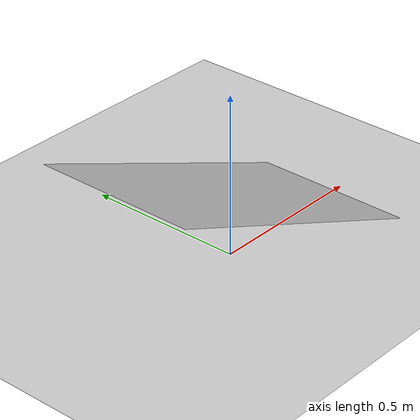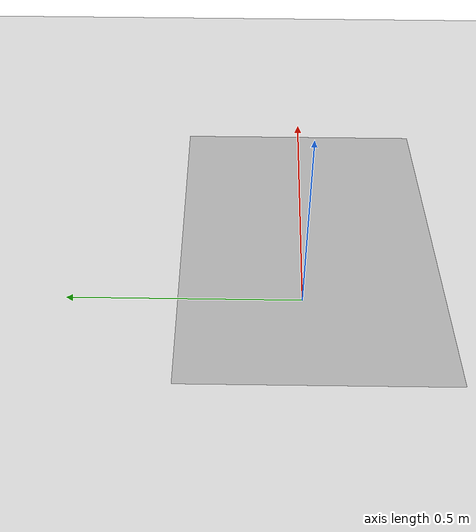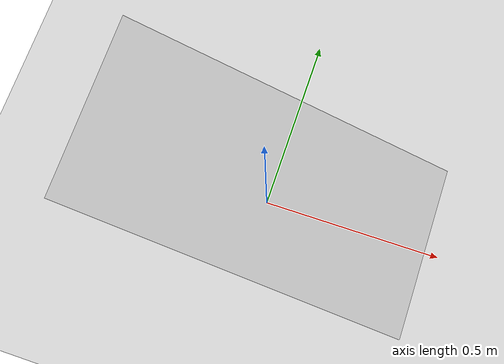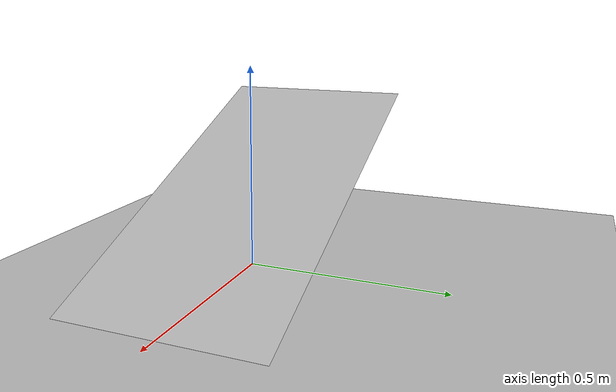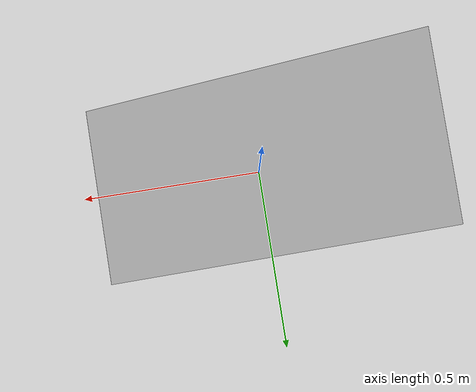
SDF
<?xml version="1.0" ?>
<sdf version="1.4">
  <world name="default">
    <include>
      <uri>model://ground_plane</uri>
    </include>

    <!-- Global light source -->
    <include>
      <uri>model://sun</uri>
    </include>

    <include>
      <uri>model://ramp</uri>
    </include>
  </world>
</sdf>

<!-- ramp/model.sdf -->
<sdf version="1.4">
  <model name="box">
    <static>true</static>
    <pose>0 0 0.2 0 0.4 0</pose>
    <link name="link">
      <collision name="collision">
        <geometry>
          <box>
            <size>1 0.5 .1</size>
          </box>
        </geometry>
      </collision>
      <visual name="visual">
        <geometry>
          <box>
            <size>1 0.5 0</size>
          </box>
        </geometry>
        <material>
          <script>
          	<uri>model://materials/scripts</uri>
          	<uri>model://materials/textures</uri>
          	<name>sand/floor</name>
          </script>
        </material>
      </visual>
    </link>
  </model>
</sdf>
